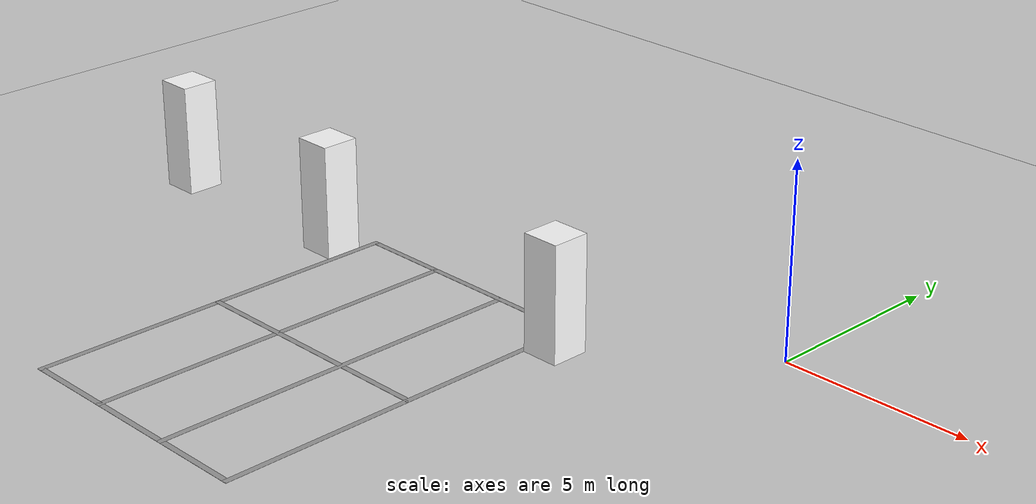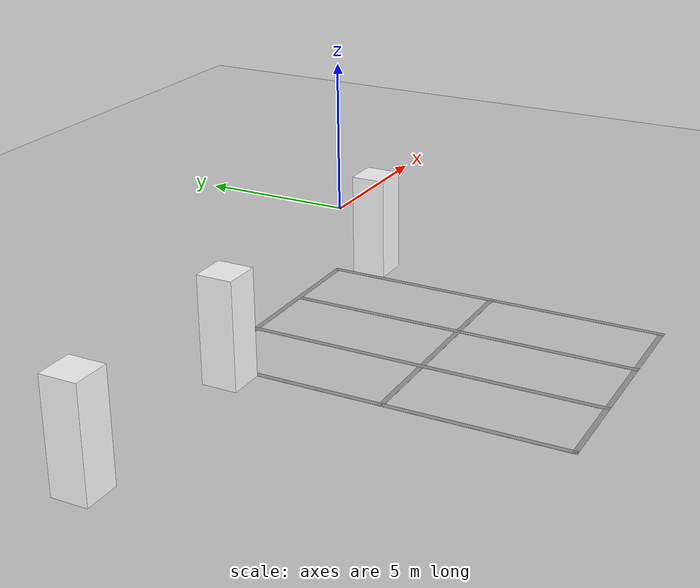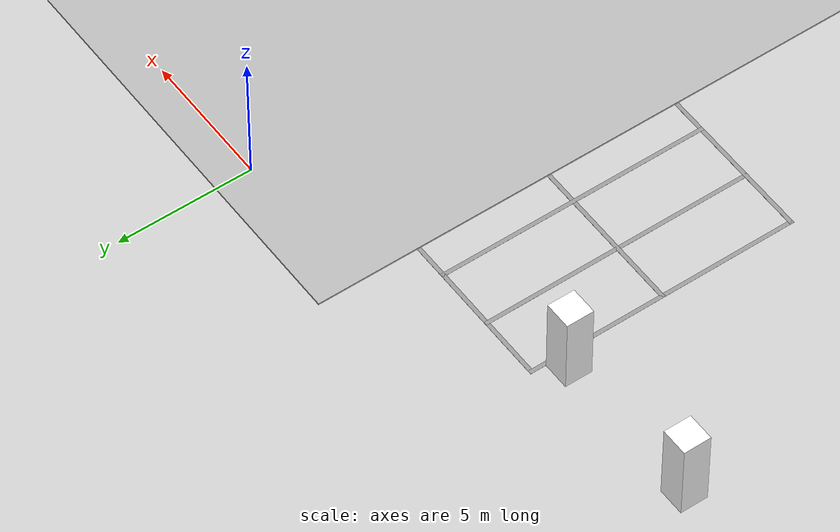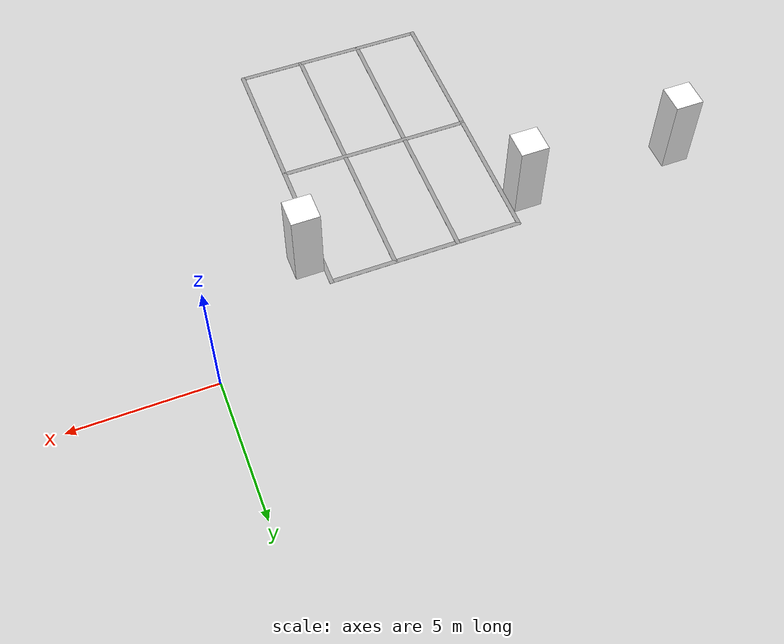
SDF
<sdf version="1.5">
 <world name="default">
  <model name="ground_plane">
   <static>true</static>
   <link name="ground_link">
    <collision name="ground_collision">
     <geometry><plane><normal>0 0 1</normal><size>100 100</size></plane></geometry>
     <surface><friction><ode><mu>100</mu><mu2>50</mu2></ode></friction></surface>
    </collision>
    <visual name="visual">
     <cast_shadows>false</cast_shadows>
     <geometry><plane><normal>0 0 1</normal><size>100 100</size></plane></geometry>
     <material>
      <script><uri>file://media/materials/scripts/gazebo.material</uri><name>Gazebo/Grey</name></script>
     </material>
    </visual>
   </link>
  </model>
  <model name="ceiling">
   <pose>0 0 30 0 0 0</pose>
   <link name="body">
    <visual name="visual"><geometry><plane><normal>0 0 1</normal><size>50 50</size></plane></geometry></visual>
   </link>
   <static>true</static>
  </model>
  <model name="column15">
   <pose>-4.025 -3.45 1.5 0 -0 0</pose>
   <link name="link">
    <collision name="collision"><geometry><box><size>1 1 3</size></box></geometry></collision>
    <visual name="visual">
     <geometry><box><size>1 1 3</size></box></geometry>
     <material>
      <script>
       <uri>model://materials/scripts</uri>
       <uri>model://materials/textures</uri>
       <name>column/parking</name>
      </script>
      <ambient>1 1 1 1</ambient>
      <diffuse>1 1 1 1</diffuse>
      <specular>0 0 0 1</specular>
      <emissive>1 1 1 0</emissive>
      <shader type="vertex"><normal_map>__default__</normal_map></shader>
     </material>
    </visual>
   </link>
   <static>1</static>
  </model>
  <model name="column16">
   <pose>-12.075 -3.45 1.5 0 -0 0</pose>
   <link name="link">
    <collision name="collision"><geometry><box><size>1 1 3</size></box></geometry></collision>
    <visual name="visual">
     <geometry><box><size>1 1 3</size></box></geometry>
     <material>
      <script>
       <uri>model://materials/scripts</uri>
       <uri>model://materials/textures</uri>
       <name>column/parking</name>
      </script>
      <ambient>1 1 1 1</ambient>
      <diffuse>1 1 1 1</diffuse>
      <specular>0 0 0 1</specular>
      <emissive>1 1 1 0</emissive>
      <shader type="vertex"><normal_map>__default__</normal_map></shader>
     </material>
    </visual>
   </link>
   <static>1</static>
  </model>
  <model name="column_s9">
   <pose>-17.875 -3.45 1.5 0 -0 0</pose>
   <link name="link">
    <collision name="collision"><geometry><box><size>1 1 3</size></box></geometry></collision>
    <visual name="visual">
     <geometry><box><size>1 1 3</size></box></geometry>
     <material>
      <script>
       <uri>model://materials/scripts</uri>
       <uri>model://materials/textures</uri>
       <name>column/parking</name>
      </script>
      <ambient>1 1 1 1</ambient>
      <diffuse>1 1 1 1</diffuse>
      <specular>0 0 0 1</specular>
      <emissive>1 1 1 0</emissive>
      <shader type="vertex"><normal_map>__default__</normal_map></shader>
     </material>
    </visual>
   </link>
   <static>1</static>
  </model>
  <model name="parking_line6">
   <pose>-5.7875 -6.2625 0 0 -0 0</pose>
   <link name="Wall_61">
    <collision name="Wall_61_Collision">
     <geometry><box><size>7.05 0.15 0.005</size></box></geometry>
     <pose>0 0 0.0025 0 -0 0</pose>
    </collision>
    <visual name="Wall_61_Visual">
     <pose>0 0 0.0025 0 -0 0</pose>
     <geometry><box><size>7.05 0.15 0.005</size></box></geometry>
     <material>
      <script><uri>file://media/materials/scripts/gazebo.material</uri><name>Gazebo/Grey</name></script>
      <ambient>1 1 1 1</ambient>
     </material>
     <meta><layer>0</layer></meta>
    </visual>
    <pose>-2.2625 3.8125 0 0 -0 0</pose>
   </link>
   <link name="Wall_62">
    <collision name="Wall_62_Collision">
     <geometry><box><size>10.15 0.15 0.005</size></box></geometry>
     <pose>0 0 0.0025 0 -0 0</pose>
    </collision>
    <visual name="Wall_62_Visual">
     <pose>0 0 0.0025 0 -0 0</pose>
     <geometry><box><size>10.15 0.15 0.005</size></box></geometry>
     <material>
      <script><uri>file://media/materials/scripts/gazebo.material</uri><name>Gazebo/Grey</name></script>
      <ambient>1 1 1 1</ambient>
     </material>
     <meta><layer>0</layer></meta>
    </visual>
    <pose>1.1875 -1.1875 0 0 -0 1.5708</pose>
   </link>
   <link name="Wall_63">
    <collision name="Wall_63_Collision">
     <geometry><box><size>7.05 0.15 0.005</size></box></geometry>
     <pose>0 0 0.0025 0 -0 0</pose>
    </collision>
    <visual name="Wall_63_Visual">
     <pose>0 0 0.0025 0 -0 0</pose>
     <geometry><box><size>7.05 0.15 0.005</size></box></geometry>
     <material>
      <script><uri>file://media/materials/scripts/gazebo.material</uri><name>Gazebo/Grey</name></script>
      <ambient>1 1 1 1</ambient>
     </material>
     <meta><layer>0</layer></meta>
    </visual>
    <pose>-2.2625 -6.1875 0 0 -0 3.14159</pose>
   </link>
   <link name="Wall_64">
    <collision name="Wall_64_Collision">
     <geometry><box><size>10.15 0.15 0.005</size></box></geometry>
     <pose>0 0 0.0025 0 -0 0</pose>
    </collision>
    <visual name="Wall_64_Visual">
     <pose>0 0 0.0025 0 -0 0</pose>
     <geometry><box><size>10.15 0.15 0.005</size></box></geometry>
     <material>
      <script><uri>file://media/materials/scripts/gazebo.material</uri><name>Gazebo/Grey</name></script>
      <ambient>1 1 1 1</ambient>
     </material>
     <meta><layer>0</layer></meta>
    </visual>
    <pose>-5.7125 -1.1875 0 0 -0 -1.5708</pose>
   </link>
   <link name="Wall_65">
    <collision name="Wall_65_Collision">
     <geometry><box><size>7.05 0.15 0.005</size></box></geometry>
     <pose>0 0 0.0025 0 -0 0</pose>
    </collision>
    <visual name="Wall_65_Visual">
     <pose>0 0 0.0025 0 -0 0</pose>
     <geometry><box><size>7.05 0.15 0.005</size></box></geometry>
     <material>
      <script><uri>file://media/materials/scripts/gazebo.material</uri><name>Gazebo/Grey</name></script>
      <ambient>1 1 1 1</ambient>
     </material>
     <meta><layer>0</layer></meta>
    </visual>
    <pose>-2.2625 -1.1875 0 0 -0 3.14159</pose>
   </link>
   <link name="Wall_66">
    <collision name="Wall_66_Collision">
     <geometry><box><size>10.15 0.15 0.005</size></box></geometry>
     <pose>0 0 0.0025 0 -0 0</pose>
    </collision>
    <visual name="Wall_66_Visual">
     <pose>0 0 0.0025 0 -0 0</pose>
     <geometry><box><size>10.15 0.15 0.005</size></box></geometry>
     <material>
      <script><uri>file://media/materials/scripts/gazebo.material</uri><name>Gazebo/Grey</name></script>
      <ambient>1 1 1 1</ambient>
     </material>
     <meta><layer>0</layer></meta>
    </visual>
    <pose>-3.4125 -1.1875 0 0 -0 1.5708</pose>
   </link>
   <link name="Wall_67">
    <collision name="Wall_67_Collision">
     <geometry><box><size>10.15 0.15 0.005</size></box></geometry>
     <pose>0 0 0.0025 0 -0 0</pose>
    </collision>
    <visual name="Wall_67_Visual">
     <pose>0 0 0.0025 0 -0 0</pose>
     <geometry><box><size>10.15 0.15 0.005</size></box></geometry>
     <material>
      <script><uri>file://media/materials/scripts/gazebo.material</uri><name>Gazebo/Grey</name></script>
      <ambient>1 1 1 1</ambient>
     </material>
     <meta><layer>0</layer></meta>
    </visual>
    <pose>-1.1125 -1.1875 0 0 -0 1.5708</pose>
   </link>
   <static>1</static>
  </model>
 </world>
</sdf>
